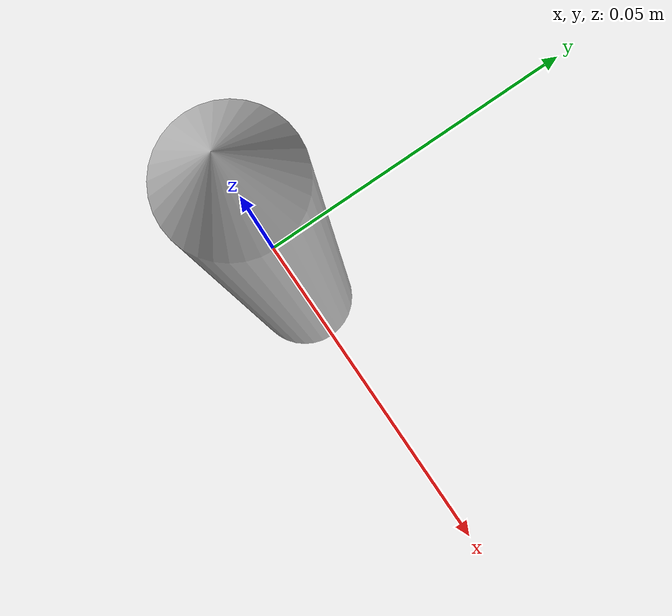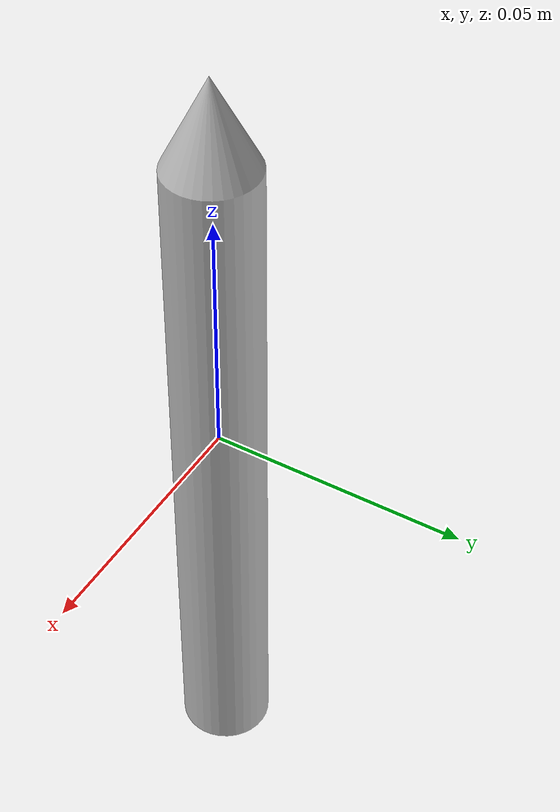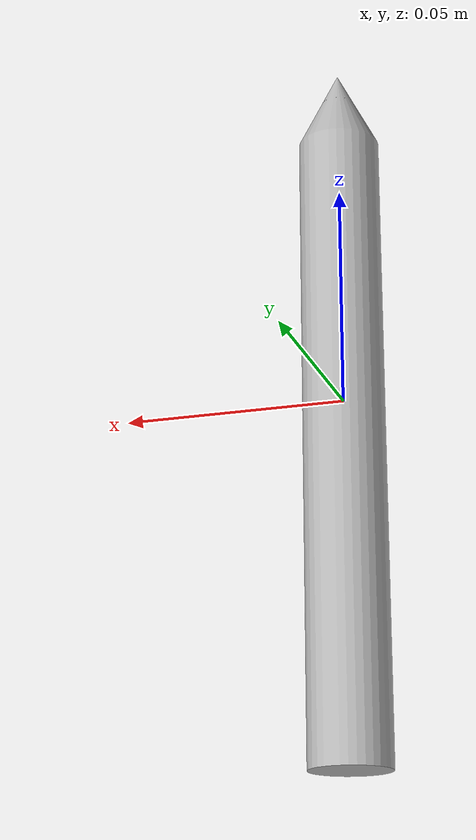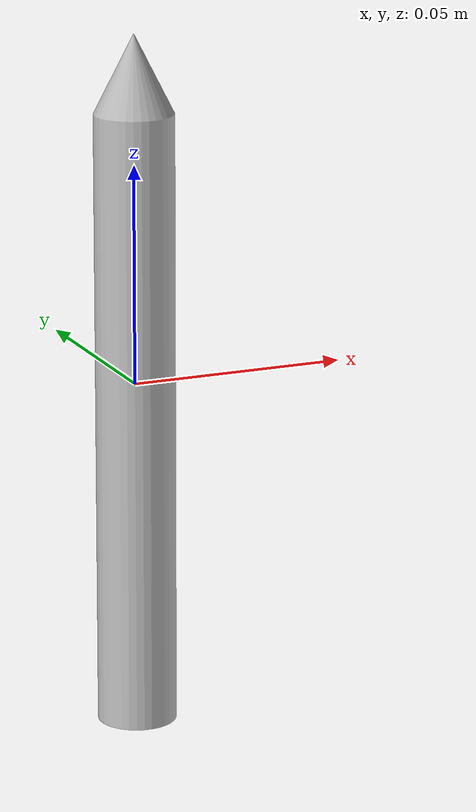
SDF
<?xml version='1.0'?>
<sdf version='1.6'>
    <model name='pencil'>
        <pose frame=''>0.0 0.0 0.0 0.0 0.0 0.</pose>
        <link name='base_link_pencil'>
            <gravity>0</gravity>
            <visual name='base_link_pencil_vis'>
                <geometry>
                    <mesh>
                        <scale>1.5 1.5 1.5</scale>
                        <uri>model://meshes/pencil_gazebo.dae</uri>
                    </mesh>
                </geometry>
            </visual>
            <collision name='base_link_pencil_col'>
                <geometry>
                    <mesh>
                        <scale>1.5 1.5 1.5</scale>
                        <uri>model://meshes/pencil_gazebo.dae</uri>
                    </mesh>
                </geometry>
            </collision>
        </link>
    </model>
</sdf>
